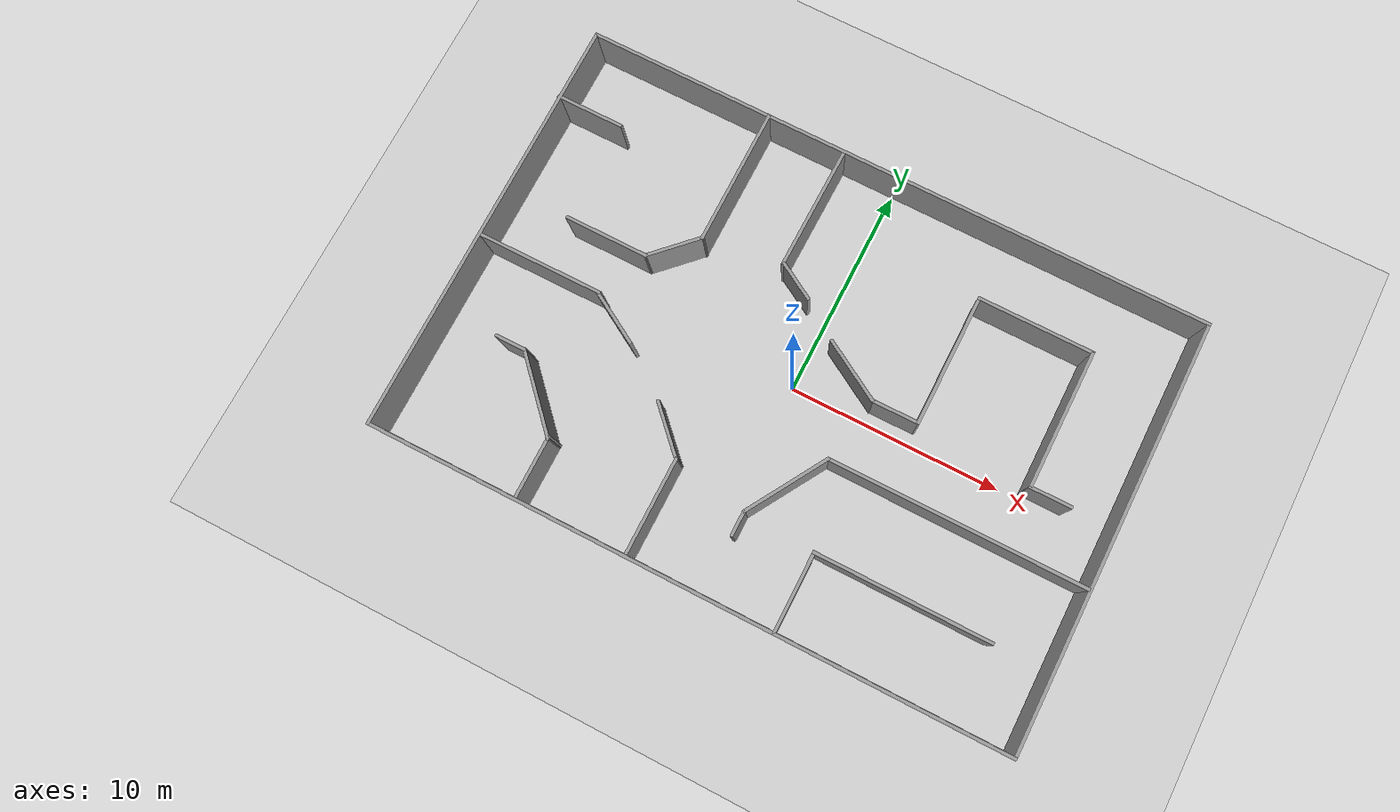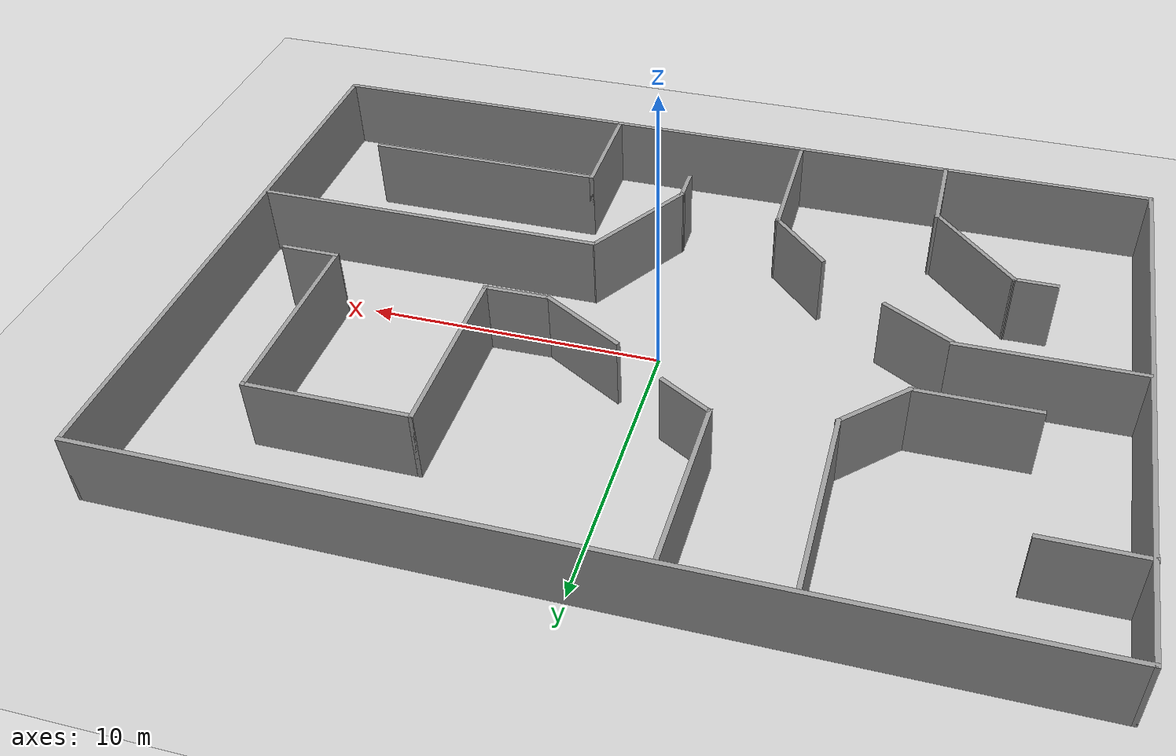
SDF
<sdf version="1.7">
 <world name="default">
  <light name="sun" type="directional">
   <pose>0 0 10 0 -0 0</pose>
   <diffuse>0.8 0.8 0.8 1</diffuse>
   <specular>0.2 0.2 0.2 1</specular>
   <attenuation>
    <range>1000</range>
    <constant>0.9</constant>
    <linear>0.01</linear>
    <quadratic>0.001</quadratic>
   </attenuation>
   <direction>-0.5 0.1 -0.9</direction>
   <spot><inner_angle>0</inner_angle><outer_angle>0</outer_angle><falloff>0</falloff></spot>
  </light>
  <model name="ground_plane">
   <static>1</static>
   <link name="link">
    <collision name="collision">
     <geometry><plane><normal>0 0 1</normal><size>100 100</size></plane></geometry>
     <surface><friction><ode><mu>100</mu><mu2>50</mu2></ode></friction></surface>
    </collision>
    <visual name="visual">
     <cast_shadows>0</cast_shadows>
     <geometry><plane><normal>0 0 1</normal><size>100 100</size></plane></geometry>
     <material>
      <script><uri>file://media/materials/scripts/gazebo.material</uri><name>Gazebo/Grey</name></script>
     </material>
    </visual>
   </link>
  </model>
  <gravity>0 0 -9.8</gravity>
  <magnetic_field>6e-06 2.3e-05 -4.2e-05</magnetic_field>
  <atmosphere type="adiabatic"/>
  <physics type="ode">
   <max_step_size>0.001</max_step_size>
   <real_time_factor>1</real_time_factor>
   <real_time_update_rate>1000</real_time_update_rate>
  </physics>
  <scene><ambient>0.4 0.4 0.4 1</ambient><background>0.7 0.7 0.7 1</background><shadows>1</shadows></scene>
  <audio><device>default</device></audio>
  <spherical_coordinates>
   <surface_model>EARTH_WGS84</surface_model>
   <latitude_deg>0</latitude_deg>
   <longitude_deg>0</longitude_deg>
   <elevation>0</elevation>
   <heading_deg>0</heading_deg>
  </spherical_coordinates>
  <model name="odin">
   <pose>-0.130385 0.160348 0 0 -0 0</pose>
   <link name="Wall_13">
    <collision name="Wall_13_Collision">
     <geometry><box><size>30.15 0.15 2.5</size></box></geometry>
     <pose>0 0 1.25 0 -0 0</pose>
    </collision>
    <visual name="Wall_13_Visual">
     <pose>0 0 1.25 0 -0 0</pose>
     <geometry><box><size>30.15 0.15 2.5</size></box></geometry>
     <material>
      <script><uri>file://media/materials/scripts/gazebo.material</uri><name>Gazebo/Grey</name></script>
      <ambient>1 1 1 1</ambient>
     </material>
     <meta><layer>0</layer></meta>
    </visual>
    <pose>0.017656 -10 0 0 -0 0</pose>
   </link>
   <link name="Wall_18">
    <collision name="Wall_18_Collision">
     <geometry><box><size>30.15 0.15 2.5</size></box></geometry>
     <pose>0 0 1.25 0 -0 0</pose>
    </collision>
    <visual name="Wall_18_Visual">
     <pose>0 0 1.25 0 -0 0</pose>
     <geometry><box><size>30.15 0.15 2.5</size></box></geometry>
     <material>
      <script><uri>file://media/materials/scripts/gazebo.material</uri><name>Gazebo/Grey</name></script>
      <ambient>1 1 1 1</ambient>
     </material>
     <meta><layer>0</layer></meta>
    </visual>
    <pose>0.017656 10 0 0 -0 0</pose>
   </link>
   <link name="Wall_20">
    <collision name="Wall_20_Collision">
     <geometry><box><size>20.15 0.15 2.5</size></box></geometry>
     <pose>0 0 1.25 0 -0 0</pose>
    </collision>
    <visual name="Wall_20_Visual">
     <pose>0 0 1.25 0 -0 0</pose>
     <geometry><box><size>20.15 0.15 2.5</size></box></geometry>
     <material>
      <script><uri>file://media/materials/scripts/gazebo.material</uri><name>Gazebo/Grey</name></script>
      <ambient>1 1 1 1</ambient>
     </material>
     <meta><layer>0</layer></meta>
    </visual>
    <pose>-14.9823 0 0 0 -0 1.5708</pose>
   </link>
   <link name="Wall_23">
    <collision name="Wall_23_Collision">
     <geometry><box><size>20.15 0.15 2.5</size></box></geometry>
     <pose>0 0 1.25 0 -0 0</pose>
    </collision>
    <visual name="Wall_23_Visual">
     <pose>0 0 1.25 0 -0 0</pose>
     <geometry><box><size>20.15 0.15 2.5</size></box></geometry>
     <material>
      <script><uri>file://media/materials/scripts/gazebo.material</uri><name>Gazebo/Grey</name></script>
      <ambient>1 1 1 1</ambient>
     </material>
     <meta><layer>0</layer></meta>
    </visual>
    <pose>15.0177 0 0 0 -0 1.5708</pose>
   </link>
   <link name="Wall_49">
    <collision name="Wall_49_Collision">
     <geometry><box><size>5.85186 0.15 2.5</size></box></geometry>
     <pose>0 0 1.25 0 -0 0</pose>
    </collision>
    <visual name="Wall_49_Visual">
     <pose>0 0 1.25 0 -0 0</pose>
     <geometry><box><size>5.85186 0.15 2.5</size></box></geometry>
     <material>
      <script><uri>file://media/materials/scripts/gazebo.material</uri><name>Gazebo/Grey</name></script>
      <ambient>1 1 1 1</ambient>
     </material>
     <meta><layer>0</layer></meta>
    </visual>
    <pose>-2.50313 7.03113 0 0 -0 -1.58565</pose>
   </link>
   <link name="Wall_55">
    <collision name="Wall_55_Collision">
     <geometry><box><size>2 0.15 2.5</size></box></geometry>
     <pose>0 0 1.25 0 -0 0</pose>
    </collision>
    <visual name="Wall_55_Visual">
     <pose>0 0 1.25 0 -0 0</pose>
     <geometry><box><size>2 0.15 2.5</size></box></geometry>
     <material>
      <script><uri>file://media/materials/scripts/gazebo.material</uri><name>Gazebo/Grey</name></script>
      <ambient>1 1 1 1</ambient>
     </material>
     <meta><layer>0</layer></meta>
    </visual>
    <pose>-1.68323 3.71776 0 0 -0 -0.523599</pose>
   </link>
   <link name="Wall_57">
    <collision name="Wall_57_Collision">
     <geometry><box><size>3.25 0.15 2.5</size></box></geometry>
     <pose>0 0 1.25 0 -0 0</pose>
    </collision>
    <visual name="Wall_57_Visual">
     <pose>0 0 1.25 0 -0 0</pose>
     <geometry><box><size>3.25 0.15 2.5</size></box></geometry>
     <material>
      <script><uri>file://media/materials/scripts/gazebo.material</uri><name>Gazebo/Grey</name></script>
      <ambient>1 1 1 1</ambient>
     </material>
     <meta><layer>0</layer></meta>
    </visual>
    <pose>2.23026 1.2512 0 0 -0 -0.523599</pose>
   </link>
   <link name="Wall_58">
    <collision name="Wall_58_Collision">
     <geometry><box><size>2.23637 0.15 2.5</size></box></geometry>
     <pose>0 0 1.25 0 -0 0</pose>
    </collision>
    <visual name="Wall_58_Visual">
     <pose>0 0 1.25 0 -0 0</pose>
     <geometry><box><size>2.23637 0.15 2.5</size></box></geometry>
     <material>
      <script><uri>file://media/materials/scripts/gazebo.material</uri><name>Gazebo/Grey</name></script>
      <ambient>1 1 1 1</ambient>
     </material>
     <meta><layer>0</layer></meta>
    </visual>
    <pose>4.67692 0.485337 0 0 -0 0.008764</pose>
   </link>
   <link name="Wall_59">
    <collision name="Wall_59_Collision">
     <geometry><box><size>6.25 0.15 2.5</size></box></geometry>
     <pose>0 0 1.25 0 -0 0</pose>
    </collision>
    <visual name="Wall_59_Visual">
     <pose>0 0 1.25 0 -0 0</pose>
     <geometry><box><size>6.25 0.15 2.5</size></box></geometry>
     <material>
      <script><uri>file://media/materials/scripts/gazebo.material</uri><name>Gazebo/Grey</name></script>
      <ambient>1 1 1 1</ambient>
     </material>
     <meta><layer>0</layer></meta>
    </visual>
    <pose>5.72006 3.54448 0 0 -0 1.5708</pose>
   </link>
   <link name="Wall_60">
    <collision name="Wall_60_Collision">
     <geometry><box><size>5.5 0.15 2.5</size></box></geometry>
     <pose>0 0 1.25 0 -0 0</pose>
    </collision>
    <visual name="Wall_60_Visual">
     <pose>0 0 1.25 0 -0 0</pose>
     <geometry><box><size>5.5 0.15 2.5</size></box></geometry>
     <material>
      <script><uri>file://media/materials/scripts/gazebo.material</uri><name>Gazebo/Grey</name></script>
      <ambient>1 1 1 1</ambient>
     </material>
     <meta><layer>0</layer></meta>
    </visual>
    <pose>8.39507 6.59448 0 0 -0 0</pose>
   </link>
   <link name="Wall_61">
    <collision name="Wall_61_Collision">
     <geometry><box><size>6.4788 0.15 2.5</size></box></geometry>
     <pose>0 0 1.25 0 -0 0</pose>
    </collision>
    <visual name="Wall_61_Visual">
     <pose>0 0 1.25 0 -0 0</pose>
     <geometry><box><size>6.4788 0.15 2.5</size></box></geometry>
     <material>
      <script><uri>file://media/materials/scripts/gazebo.material</uri><name>Gazebo/Grey</name></script>
      <ambient>1 1 1 1</ambient>
     </material>
     <meta><layer>0</layer></meta>
    </visual>
    <pose>11.0701 3.37688 0 0 -0 -1.5708</pose>
   </link>
   <link name="Wall_63">
    <collision name="Wall_63_Collision">
     <geometry><box><size>2 0.15 2.5</size></box></geometry>
     <pose>0 0 1.25 0 -0 0</pose>
    </collision>
    <visual name="Wall_63_Visual">
     <pose>0 0 1.25 0 -0 0</pose>
     <geometry><box><size>2 0.15 2.5</size></box></geometry>
     <material>
      <script><uri>file://media/materials/scripts/gazebo.material</uri><name>Gazebo/Grey</name></script>
      <ambient>1 1 1 1</ambient>
     </material>
     <meta><layer>0</layer></meta>
    </visual>
    <pose>11.9951 0.159275 0 0 -0 0</pose>
   </link>
   <link name="Wall_65">
    <collision name="Wall_65_Collision">
     <geometry><box><size>12 0.15 2.5</size></box></geometry>
     <pose>0 0 1.25 0 -0 0</pose>
    </collision>
    <visual name="Wall_65_Visual">
     <pose>0 0 1.25 0 -0 0</pose>
     <geometry><box><size>12 0.15 2.5</size></box></geometry>
     <material>
      <script><uri>file://media/materials/scripts/gazebo.material</uri><name>Gazebo/Grey</name></script>
      <ambient>1 1 1 1</ambient>
     </material>
     <meta><layer>0</layer></meta>
    </visual>
    <pose>8.99398 -2.59462 0 0 -0 3.14159</pose>
   </link>
   <link name="Wall_66">
    <collision name="Wall_66_Collision">
     <geometry><box><size>4.27888 0.15 2.5</size></box></geometry>
     <pose>0 0 1.25 0 -0 0</pose>
    </collision>
    <visual name="Wall_66_Visual">
     <pose>0 0 1.25 0 -0 0</pose>
     <geometry><box><size>4.27888 0.15 2.5</size></box></geometry>
     <material>
      <script><uri>file://media/materials/scripts/gazebo.material</uri><name>Gazebo/Grey</name></script>
      <ambient>1 1 1 1</ambient>
     </material>
     <meta><layer>0</layer></meta>
    </visual>
    <pose>1.94174 -4.36252 0 0 -0 -2.11343</pose>
   </link>
   <link name="Wall_67">
    <collision name="Wall_67_Collision">
     <geometry><box><size>1.25 0.15 2.5</size></box></geometry>
     <pose>0 0 1.25 0 -0 0</pose>
    </collision>
    <visual name="Wall_67_Visual">
     <pose>0 0 1.25 0 -0 0</pose>
     <geometry><box><size>1.25 0.15 2.5</size></box></geometry>
     <material>
      <script><uri>file://media/materials/scripts/gazebo.material</uri><name>Gazebo/Grey</name></script>
      <ambient>1 1 1 1</ambient>
     </material>
     <meta><layer>0</layer></meta>
    </visual>
    <pose>0.875682 -6.68041 0 0 -0 -1.5708</pose>
   </link>
   <link name="Wall_69">
    <collision name="Wall_69_Collision">
     <geometry><box><size>6.5 0.15 2.5</size></box></geometry>
     <pose>0 0 1.25 0 -0 0</pose>
    </collision>
    <visual name="Wall_69_Visual">
     <pose>0 0 1.25 0 -0 0</pose>
     <geometry><box><size>6.5 0.15 2.5</size></box></geometry>
     <material>
      <script><uri>file://media/materials/scripts/gazebo.material</uri><name>Gazebo/Grey</name></script>
      <ambient>1 1 1 1</ambient>
     </material>
     <meta><layer>0</layer></meta>
    </visual>
    <pose>-6.21755 6.80912 0 0 -0 -1.5708</pose>
   </link>
   <link name="Wall_70">
    <collision name="Wall_70_Collision">
     <geometry><box><size>2.75 0.15 2.5</size></box></geometry>
     <pose>0 0 1.25 0 -0 0</pose>
    </collision>
    <visual name="Wall_70_Visual">
     <pose>0 0 1.25 0 -0 0</pose>
     <geometry><box><size>2.75 0.15 2.5</size></box></geometry>
     <material>
      <script><uri>file://media/materials/scripts/gazebo.material</uri><name>Gazebo/Grey</name></script>
      <ambient>1 1 1 1</ambient>
     </material>
     <meta><layer>0</layer></meta>
    </visual>
    <pose>-7.13679 2.71488 0 0 -0 -2.35619</pose>
   </link>
   <link name="Wall_71">
    <collision name="Wall_71_Collision">
     <geometry><box><size>4 0.15 2.5</size></box></geometry>
     <pose>0 0 1.25 0 -0 0</pose>
    </collision>
    <visual name="Wall_71_Visual">
     <pose>0 0 1.25 0 -0 0</pose>
     <geometry><box><size>4 0.15 2.5</size></box></geometry>
     <material>
      <script><uri>file://media/materials/scripts/gazebo.material</uri><name>Gazebo/Grey</name></script>
      <ambient>1 1 1 1</ambient>
     </material>
     <meta><layer>0</layer></meta>
    </visual>
    <pose>-9.98103 1.79564 0 0 -0 3.14159</pose>
   </link>
   <link name="Wall_73">
    <collision name="Wall_73_Collision">
     <geometry><box><size>4.5 0.15 2.5</size></box></geometry>
     <pose>0 0 1.25 0 -0 0</pose>
    </collision>
    <visual name="Wall_73_Visual">
     <pose>0 0 1.25 0 -0 0</pose>
     <geometry><box><size>4.5 0.15 2.5</size></box></geometry>
     <material>
      <script><uri>file://media/materials/scripts/gazebo.material</uri><name>Gazebo/Grey</name></script>
      <ambient>1 1 1 1</ambient>
     </material>
     <meta><layer>0</layer></meta>
    </visual>
    <pose>-2.66909 -7.66334 0 0 -0 1.5708</pose>
   </link>
   <link name="Wall_74">
    <collision name="Wall_74_Collision">
     <geometry><box><size>2.75 0.15 2.5</size></box></geometry>
     <pose>0 0 1.25 0 -0 0</pose>
    </collision>
    <visual name="Wall_74_Visual">
     <pose>0 0 1.25 0 -0 0</pose>
     <geometry><box><size>2.75 0.15 2.5</size></box></geometry>
     <material>
      <script><uri>file://media/materials/scripts/gazebo.material</uri><name>Gazebo/Grey</name></script>
      <ambient>1 1 1 1</ambient>
     </material>
     <meta><layer>0</layer></meta>
    </visual>
    <pose>-3.58833 -4.56911 0 0 -0 2.35619</pose>
   </link>
   <link name="Wall_76">
    <collision name="Wall_76_Collision">
     <geometry><box><size>6.00613 0.15 2.5</size></box></geometry>
     <pose>0 0 1.25 0 -0 0</pose>
    </collision>
    <visual name="Wall_76_Visual">
     <pose>0 0 1.25 0 -0 0</pose>
     <geometry><box><size>6.00613 0.15 2.5</size></box></geometry>
     <material>
      <script><uri>file://media/materials/scripts/gazebo.material</uri><name>Gazebo/Grey</name></script>
      <ambient>1 1 1 1</ambient>
     </material>
     <meta><layer>0</layer></meta>
    </visual>
    <pose>-11.9772 -0.588765 0 0 -0 0.00387</pose>
   </link>
   <link name="Wall_77">
    <collision name="Wall_77_Collision">
     <geometry><box><size>2.75 0.15 2.5</size></box></geometry>
     <pose>0 0 1.25 0 -0 0</pose>
    </collision>
    <visual name="Wall_77_Visual">
     <pose>0 0 1.25 0 -0 0</pose>
     <geometry><box><size>2.75 0.15 2.5</size></box></geometry>
     <material>
      <script><uri>file://media/materials/scripts/gazebo.material</uri><name>Gazebo/Grey</name></script>
      <ambient>1 1 1 1</ambient>
     </material>
     <meta><layer>0</layer></meta>
    </visual>
    <pose>-7.9233 -1.28063 0 0 -0 -0.523599</pose>
   </link>
   <link name="Wall_79">
    <collision name="Wall_79_Collision">
     <geometry><box><size>3 0.15 2.5</size></box></geometry>
     <pose>0 0 1.25 0 -0 0</pose>
    </collision>
    <visual name="Wall_79_Visual">
     <pose>0 0 1.25 0 -0 0</pose>
     <geometry><box><size>3 0.15 2.5</size></box></geometry>
     <material>
      <script><uri>file://media/materials/scripts/gazebo.material</uri><name>Gazebo/Grey</name></script>
      <ambient>1 1 1 1</ambient>
     </material>
     <meta><layer>0</layer></meta>
    </visual>
    <pose>-7.89398 -8.50841 0 0 -0 1.5708</pose>
   </link>
   <link name="Wall_80">
    <collision name="Wall_80_Collision">
     <geometry><box><size>4.17497 0.15 2.5</size></box></geometry>
     <pose>0 0 1.25 0 -0 0</pose>
    </collision>
    <visual name="Wall_80_Visual">
     <pose>0 0 1.25 0 -0 0</pose>
     <geometry><box><size>4.17497 0.15 2.5</size></box></geometry>
     <material>
      <script><uri>file://media/materials/scripts/gazebo.material</uri><name>Gazebo/Grey</name></script>
      <ambient>1 1 1 1</ambient>
     </material>
     <meta><layer>0</layer></meta>
    </visual>
    <pose>-9.28593 -5.69146 0 0 -0 2.33457</pose>
   </link>
   <link name="Wall_81">
    <collision name="Wall_81_Collision">
     <geometry><box><size>1.5 0.15 2.5</size></box></geometry>
     <pose>0 0 1.25 0 -0 0</pose>
    </collision>
    <visual name="Wall_81_Visual">
     <pose>0 0 1.25 0 -0 0</pose>
     <geometry><box><size>1.5 0.15 2.5</size></box></geometry>
     <material>
      <script><uri>file://media/materials/scripts/gazebo.material</uri><name>Gazebo/Grey</name></script>
      <ambient>1 1 1 1</ambient>
     </material>
     <meta><layer>0</layer></meta>
    </visual>
    <pose>-11.3529 -4.23799 0 0 -0 3.14159</pose>
   </link>
   <link name="Wall_83">
    <collision name="Wall_83_Collision">
     <geometry><box><size>3.75 0.15 2.5</size></box></geometry>
     <pose>0 0 1.25 0 -0 0</pose>
    </collision>
    <visual name="Wall_83_Visual">
     <pose>0 0 1.25 0 -0 0</pose>
     <geometry><box><size>3.75 0.15 2.5</size></box></geometry>
     <material>
      <script><uri>file://media/materials/scripts/gazebo.material</uri><name>Gazebo/Grey</name></script>
      <ambient>1 1 1 1</ambient>
     </material>
     <meta><layer>0</layer></meta>
    </visual>
    <pose>4.22701 -8.13341 0 0 -0 1.5708</pose>
   </link>
   <link name="Wall_84">
    <collision name="Wall_84_Collision">
     <geometry><box><size>8.25 0.15 2.5</size></box></geometry>
     <pose>0 0 1.25 0 -0 0</pose>
    </collision>
    <visual name="Wall_84_Visual">
     <pose>0 0 1.25 0 -0 0</pose>
     <geometry><box><size>8.25 0.15 2.5</size></box></geometry>
     <material>
      <script><uri>file://media/materials/scripts/gazebo.material</uri><name>Gazebo/Grey</name></script>
      <ambient>1 1 1 1</ambient>
     </material>
     <meta><layer>0</layer></meta>
    </visual>
    <pose>8.27701 -6.33341 0 0 -0 0</pose>
   </link>
   <link name="Wall_86">
    <collision name="Wall_86_Collision">
     <geometry><box><size>3.25 0.15 2.5</size></box></geometry>
     <pose>0 0 1.25 0 -0 0</pose>
    </collision>
    <visual name="Wall_86_Visual">
     <pose>0 0 1.25 0 -0 0</pose>
     <geometry><box><size>3.25 0.15 2.5</size></box></geometry>
     <material>
      <script><uri>file://media/materials/scripts/gazebo.material</uri><name>Gazebo/Grey</name></script>
      <ambient>1 1 1 1</ambient>
     </material>
     <meta><layer>0</layer></meta>
    </visual>
    <pose>-13.4677 6.60995 0 0 -0 0</pose>
   </link>
   <static>1</static>
  </model>
 </world>
</sdf>
